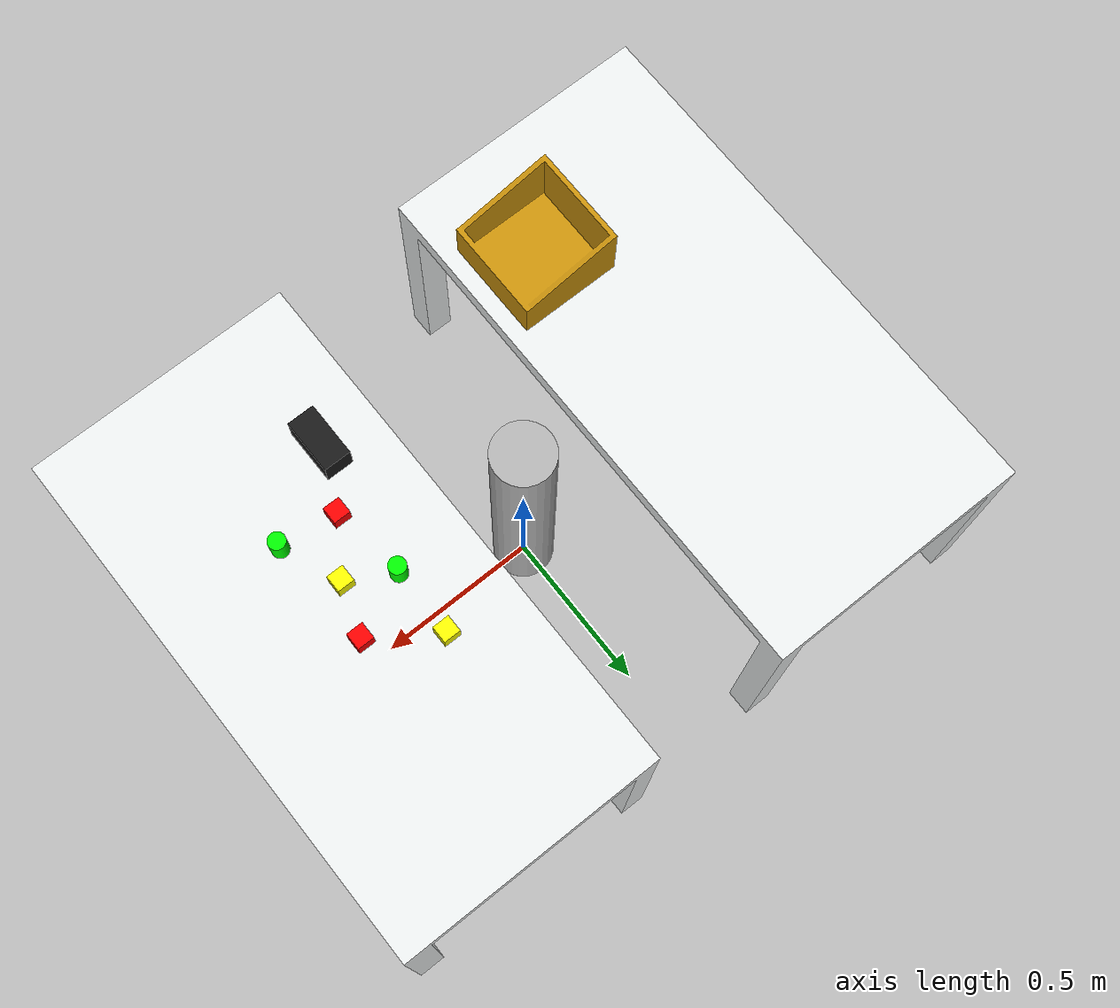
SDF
<sdf version="1.8">
 <world name="default">
  <plugin filename="gz-sim-physics-system" name="gz::sim::systems::Physics"/>
  <plugin filename="gz-sim-user-commands-system" name="gz::sim::systems::UserCommands"/>
  <plugin filename="gz-sim-scene-broadcaster-system" name="gz::sim::systems::SceneBroadcaster"/>
  <plugin filename="gz-sim-sensors-system" name="gz::sim::systems::Sensors">
   <render_engine>ogre2</render_engine>
  </plugin>
  <plugin filename="libgz_link_attacher.so" name="gz_link_attacher::LinkAttacher"/>
  <plugin filename="gz-sim-contact-system" name="gz::sim::systems::Contact"/>
  <scene>
   <ambient>0.4 0.4 0.4 1</ambient>
   <background>0.7 0.7 0.7 1</background>
   <shadows>true</shadows>
   <grid>false</grid>
  </scene>
  <light type="directional" name="sun">
   <pose>0 0 10 0 0 0</pose>
   <diffuse>0.8 0.8 0.8 1</diffuse>
   <specular>0.2 0.2 0.2 1</specular>
   <direction>-0.5 0.1 -0.9</direction>
   <visualize>false</visualize>
  </light>
  <model name="ground_plane">
   <static>true</static>
   <link name="link">
    <collision name="collision">
     <geometry><plane><normal>0 0 1</normal><size>100 100</size></plane></geometry>
    </collision>
    <visual name="visual">
     <geometry><plane><normal>0 0 1</normal><size>100 100</size></plane></geometry>
     <material>
      <ambient>0.8 0.8 0.8 1</ambient>
      <diffuse>0.8 0.8 0.8 1</diffuse>
      <specular>0.8 0.8 0.8 1</specular>
     </material>
    </visual>
   </link>
  </model>
  <model name="ground_logo_big">
   <static>true</static>
   <pose>-0.5 0 0 0 0 1.57</pose>
   <link name="link">
    <visual name="visual">
     <pose>0 0 0.001 0 0 0</pose>
     <geometry>
      <mesh><scale>1 1 1</scale><uri>model://ground_logo_big/meshes/ground_logo.dae</uri></mesh>
     </geometry>
    </visual>
   </link>
  </model>
  <model name="pick_table">
   <static>true</static>
   <pose>0.6 0 0 0 0 0</pose>
   <link name="link">
    <visual name="visual">
     <pose>0 0 0.73 0 0 0</pose>
     <geometry><mesh><scale>1 1 1</scale><uri>model://target_table/meshes/target_table.dae</uri></mesh></geometry>
    </visual>
    <collision name="collision_0">
     <pose>0 0 0.73 0 0 0</pose>
     <geometry><box><size>0.8 1.6 0.06</size></box></geometry>
    </collision>
   </link>
  </model>
  <model name="place_table">
   <static>true</static>
   <pose>-0.6 0 0 0 0 0</pose>
   <link name="link">
    <visual name="visual">
     <pose>0 0 0.73 0 0 0</pose>
     <geometry><mesh><scale>1 1 1</scale><uri>model://target_table/meshes/target_table.dae</uri></mesh></geometry>
    </visual>
    <collision name="collision_0">
     <pose>0 0 0.73 0 0 0</pose>
     <geometry><box><size>0.8 1.6 0.06</size></box></geometry>
    </collision>
   </link>
  </model>
  <model name="robotbase">
   <static>true</static>
   <link name="link">
    <pose>0 0 0.45 0 0 0</pose>
    <visual name="visual">
     <geometry><cylinder><radius>0.09</radius><length>0.9</length></cylinder></geometry>
     <material>
      <ambient>0.3 0.3 0.3 1</ambient>
      <diffuse>0.7 0.7 0.7 1</diffuse>
      <specular>0.01 0.01 0.01 1</specular>
     </material>
    </visual>
    <collision name="collision">
     <geometry><cylinder><radius>0.09</radius><length>0.9</length></cylinder></geometry>
    </collision>
   </link>
  </model>
  <model name="yellow_target">
   <static>true</static>
   <pose>-0.4 -0.45 0.755 0 0 0</pose>
   <link name="link">
    <visual name="visual">
     <pose>0 0 0.01 0 0 0</pose>
     <geometry>
      <mesh><scale>0.5 0.5 0.5</scale><uri>model://yellow_target/meshes/yellow_target.dae</uri></mesh>
     </geometry>
    </visual>
    <collision name="front_wall">
     <pose>0.144 0 0 0 0 0</pose>
     <geometry><box><size>0.012 0.3 0.24</size></box></geometry>
    </collision>
    <collision name="right_wall">
     <pose>0 -0.144 0 0 0 0</pose>
     <geometry><box><size>0.3 0.012 0.36</size></box></geometry>
    </collision>
    <collision name="bottom"><geometry><box><size>0.3 0.3 0.025</size></box></geometry></collision>
    <collision name="left_wall">
     <pose>0 0.144 0 0 0 0</pose>
     <geometry><box><size>0.3 0.012 0.39</size></box></geometry>
    </collision>
    <collision name="back_wall">
     <pose>-0.144 0 0 0 0 0</pose>
     <geometry><box><size>0.012 0.3 0.39</size></box></geometry>
    </collision>
   </link>
  </model>
  <model name="overhead_camera">
   <static>true</static>
   <pose>0.5 0 1.9 0 1.5708 0</pose>
   <link name="link">
    <visual name="visual">
     <geometry><box><size>0.06 0.12 0.06</size></box></geometry>
     <material>
      <ambient>0.1 0.1 0.1 1</ambient>
      <diffuse>0.1 0.1 0.1 1</diffuse>
      <specular>0.1 0.1 0.1 1</specular>
     </material>
    </visual>
    <sensor name="overhead_camera" type="camera">
     <always_on>true</always_on>
     <visualize>true</visualize>
     <update_rate>15</update_rate>
     <topic>/overhead_camera/image</topic>
     <camera name="overhead_camera">
      <camera_info_topic>/overhead_camera/camera_info</camera_info_topic>
      <horizontal_fov>1.047</horizontal_fov>
      <image><width>640</width><height>480</height><format>R8G8B8</format></image>
      <clip><near>0.05</near><far>8.0</far></clip>
     </camera>
    </sensor>
   </link>
  </model>
  <model name="red_box_1">
   <pose>0.45 -0.2 0.786 0 0 0</pose>
   <link name="link">
    <inertial>
     <mass>0.01</mass>
     <inertia>
      <ixx>0.0000041667</ixx>
      <ixy>0</ixy>
      <ixz>0</ixz>
      <iyy>0.0000041667</iyy>
      <iyz>0</iyz>
      <izz>0.0000041667</izz>
     </inertia>
    </inertial>
    <collision name="collision"><geometry><box><size>0.05 0.05 0.05</size></box></geometry></collision>
    <visual name="visual">
     <geometry><box><size>0.05 0.05 0.05</size></box></geometry>
     <material><ambient>1 0 0 1</ambient><diffuse>1 0 0 1</diffuse><specular>0.5 0.5 0.5 1</specular></material>
    </visual>
   </link>
  </model>
  <model name="red_box_2">
   <pose>0.6 0.1 0.786 0 0 0</pose>
   <link name="link">
    <inertial>
     <mass>0.01</mass>
     <inertia>
      <ixx>0.0000041667</ixx>
      <ixy>0</ixy>
      <ixz>0</ixz>
      <iyy>0.0000041667</iyy>
      <iyz>0</iyz>
      <izz>0.0000041667</izz>
     </inertia>
    </inertial>
    <collision name="collision"><geometry><box><size>0.05 0.05 0.05</size></box></geometry></collision>
    <visual name="visual">
     <geometry><box><size>0.05 0.05 0.05</size></box></geometry>
     <material><ambient>1 0 0 1</ambient><diffuse>1 0 0 1</diffuse><specular>0.5 0.5 0.5 1</specular></material>
    </visual>
   </link>
  </model>
  <model name="yellow_box_1">
   <pose>0.55 -0.05 0.786 0 0 0</pose>
   <link name="link">
    <inertial>
     <mass>0.01</mass>
     <inertia>
      <ixx>0.0000041667</ixx>
      <ixy>0</ixy>
      <ixz>0</ixz>
      <iyy>0.0000041667</iyy>
      <iyz>0</iyz>
      <izz>0.0000041667</izz>
     </inertia>
    </inertial>
    <collision name="collision"><geometry><box><size>0.05 0.05 0.05</size></box></geometry></collision>
    <visual name="visual">
     <geometry><box><size>0.05 0.05 0.05</size></box></geometry>
     <material><ambient>1 1 0 1</ambient><diffuse>1 1 0 1</diffuse><specular>0.5 0.5 0.5 1</specular></material>
    </visual>
   </link>
  </model>
  <model name="yellow_box_2">
   <pose>0.42 0.22 0.786 0 0 0</pose>
   <link name="link">
    <inertial>
     <mass>0.01</mass>
     <inertia>
      <ixx>0.0000041667</ixx>
      <ixy>0</ixy>
      <ixz>0</ixz>
      <iyy>0.0000041667</iyy>
      <iyz>0</iyz>
      <izz>0.0000041667</izz>
     </inertia>
    </inertial>
    <collision name="collision"><geometry><box><size>0.05 0.05 0.05</size></box></geometry></collision>
    <visual name="visual">
     <geometry><box><size>0.05 0.05 0.05</size></box></geometry>
     <material><ambient>1 1 0 1</ambient><diffuse>1 1 0 1</diffuse><specular>0.5 0.5 0.5 1</specular></material>
    </visual>
   </link>
  </model>
  <model name="green_cylinder_1">
   <pose>0.62 -0.22 0.801 0 0 0</pose>
   <link name="link">
    <inertial>
     <mass>0.01</mass>
     <inertia>
      <ixx>0.0000068958</ixx>
      <ixy>0</ixy>
      <ixz>0</ixz>
      <iyy>0.0000068958</iyy>
      <iyz>0</iyz>
      <izz>0.0000031250</izz>
     </inertia>
    </inertial>
    <collision name="collision">
     <geometry><cylinder><radius>0.025</radius><length>0.08</length></cylinder></geometry>
    </collision>
    <visual name="visual">
     <geometry><cylinder><radius>0.025</radius><length>0.08</length></cylinder></geometry>
     <material><ambient>0 1 0 1</ambient><diffuse>0 1 0 1</diffuse><specular>0.5 0.5 0.5 1</specular></material>
    </visual>
   </link>
  </model>
  <model name="green_cylinder_2">
   <pose>0.42 0.02 0.801 0 0 0</pose>
   <link name="link">
    <inertial>
     <mass>0.01</mass>
     <inertia>
      <ixx>0.0000068958</ixx>
      <ixy>0</ixy>
      <ixz>0</ixz>
      <iyy>0.0000068958</iyy>
      <iyz>0</iyz>
      <izz>0.0000031250</izz>
     </inertia>
    </inertial>
    <collision name="collision">
     <geometry><cylinder><radius>0.025</radius><length>0.08</length></cylinder></geometry>
    </collision>
    <visual name="visual">
     <geometry><cylinder><radius>0.025</radius><length>0.08</length></cylinder></geometry>
     <material><ambient>0 1 0 1</ambient><diffuse>0 1 0 1</diffuse><specular>0.5 0.5 0.5 1</specular></material>
    </visual>
   </link>
  </model>
 </world>
</sdf>
